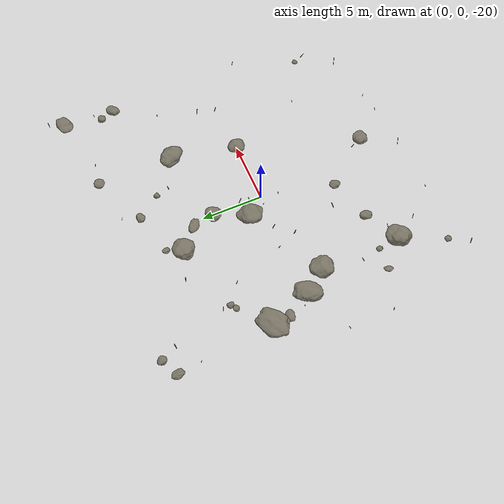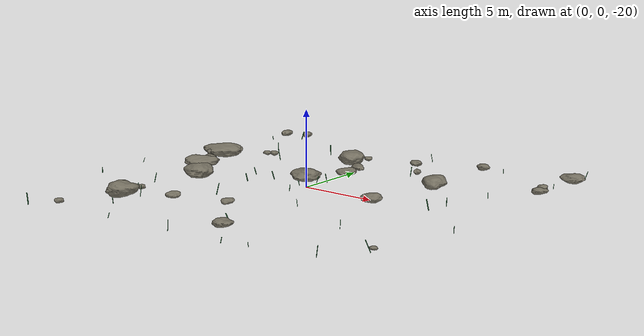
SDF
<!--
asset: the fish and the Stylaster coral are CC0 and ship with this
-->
<sdf version="1.9">
 <world name="mode_aware_survey">
  <model name="boulder_field">
   <static>true</static>
   <link name="link">
    <visual name="bo0">
     <pose>-1.24 1.55 -19.65 0 0 3.21</pose>
     <geometry>
      <mesh>
       <uri>model://uuv_mode_aware_navigation/models/meshes/rock_0.obj</uri>
       <scale>0.91 0.92 0.78</scale>
      </mesh>
     </geometry>
     <material>
      <ambient>0.07 0.08 0.07 1</ambient>
      <diffuse>0.46 0.44 0.38 1</diffuse>
      <specular>0.05 0.05 0.05 1</specular>
      <pbr>
       <metal>
        <albedo_map>model://uuv_mode_aware_navigation/models/textures/rock_albedo.png</albedo_map>
        <normal_map>model://uuv_mode_aware_navigation/models/textures/rock_normal.png</normal_map>
        <roughness>0.95</roughness>
        <metalness>0.0</metalness>
       </metal>
      </pbr>
     </material>
    </visual>
    <visual name="bo1">
     <pose>3.38 7.62 -19.88 0 0 0.26</pose>
     <geometry>
      <mesh>
       <uri>model://uuv_mode_aware_navigation/models/meshes/rock_1.obj</uri>
       <scale>0.28 0.25 0.27</scale>
      </mesh>
     </geometry>
     <material>
      <ambient>0.11 0.11 0.10 1</ambient>
      <diffuse>0.46 0.44 0.38 1</diffuse>
      <specular>0.05 0.05 0.05 1</specular>
      <pbr>
       <metal>
        <albedo_map>model://uuv_mode_aware_navigation/models/textures/rock_albedo.png</albedo_map>
        <normal_map>model://uuv_mode_aware_navigation/models/textures/rock_normal.png</normal_map>
        <roughness>0.95</roughness>
        <metalness>0.0</metalness>
       </metal>
      </pbr>
     </material>
    </visual>
    <visual name="bo2">
     <pose>12.54 12.08 -19.78 0 0 0.37</pose>
     <geometry>
      <mesh>
       <uri>model://uuv_mode_aware_navigation/models/meshes/rock_2.obj</uri>
       <scale>0.74 0.63 0.49</scale>
      </mesh>
     </geometry>
     <material>
      <ambient>0.10 0.10 0.09 1</ambient>
      <diffuse>0.46 0.44 0.38 1</diffuse>
      <specular>0.05 0.05 0.05 1</specular>
      <pbr>
       <metal>
        <albedo_map>model://uuv_mode_aware_navigation/models/textures/rock_albedo.png</albedo_map>
        <normal_map>model://uuv_mode_aware_navigation/models/textures/rock_normal.png</normal_map>
        <roughness>0.95</roughness>
        <metalness>0.0</metalness>
       </metal>
      </pbr>
     </material>
    </visual>
    <visual name="bo3">
     <pose>-8.05 -6.71 -19.90 0 0 4.02</pose>
     <geometry>
      <mesh>
       <uri>model://uuv_mode_aware_navigation/models/meshes/rock_3.obj</uri>
       <scale>0.24 0.24 0.23</scale>
      </mesh>
     </geometry>
     <material>
      <ambient>0.10 0.10 0.09 1</ambient>
      <diffuse>0.46 0.44 0.38 1</diffuse>
      <specular>0.05 0.05 0.05 1</specular>
      <pbr>
       <metal>
        <albedo_map>model://uuv_mode_aware_navigation/models/textures/rock_albedo.png</albedo_map>
        <normal_map>model://uuv_mode_aware_navigation/models/textures/rock_normal.png</normal_map>
        <roughness>0.95</roughness>
        <metalness>0.0</metalness>
       </metal>
      </pbr>
     </material>
    </visual>
    <visual name="bo4">
     <pose>-0.01 4.22 -19.75 0 0 4.45</pose>
     <geometry>
      <mesh>
       <uri>model://uuv_mode_aware_navigation/models/meshes/rock_4.obj</uri>
       <scale>0.52 0.66 0.55</scale>
      </mesh>
     </geometry>
     <material>
      <ambient>0.12 0.12 0.11 1</ambient>
      <diffuse>0.46 0.44 0.38 1</diffuse>
      <specular>0.05 0.05 0.05 1</specular>
      <pbr>
       <metal>
        <albedo_map>model://uuv_mode_aware_navigation/models/textures/rock_albedo.png</albedo_map>
        <normal_map>model://uuv_mode_aware_navigation/models/textures/rock_normal.png</normal_map>
        <roughness>0.95</roughness>
        <metalness>0.0</metalness>
       </metal>
      </pbr>
     </material>
    </visual>
    <visual name="bo5">
     <pose>-4.80 -7.03 -19.84 0 0 2.43</pose>
     <geometry>
      <mesh>
       <uri>model://uuv_mode_aware_navigation/models/meshes/rock_5.obj</uri>
       <scale>0.38 0.48 0.35</scale>
      </mesh>
     </geometry>
     <material>
      <ambient>0.12 0.12 0.11 1</ambient>
      <diffuse>0.46 0.44 0.38 1</diffuse>
      <specular>0.05 0.05 0.05 1</specular>
      <pbr>
       <metal>
        <albedo_map>model://uuv_mode_aware_navigation/models/textures/rock_albedo.png</albedo_map>
        <normal_map>model://uuv_mode_aware_navigation/models/textures/rock_normal.png</normal_map>
        <roughness>0.95</roughness>
        <metalness>0.0</metalness>
       </metal>
      </pbr>
     </material>
    </visual>
    <visual name="bo6">
     <pose>11.91 9.03 -19.92 0 0 2.50</pose>
     <geometry>
      <mesh>
       <uri>model://uuv_mode_aware_navigation/models/meshes/rock_6.obj</uri>
       <scale>0.3076 0.3076 0.3076</scale>
      </mesh>
     </geometry>
     <material>
      <ambient>0.12 0.13 0.12 1</ambient>
      <diffuse>0.46 0.44 0.38 1</diffuse>
      <specular>0.05 0.05 0.05 1</specular>
      <pbr>
       <metal>
        <albedo_map>model://uuv_mode_aware_navigation/models/textures/rock_albedo.png</albedo_map>
        <normal_map>model://uuv_mode_aware_navigation/models/textures/rock_normal.png</normal_map>
        <roughness>0.95</roughness>
        <metalness>0.0</metalness>
       </metal>
      </pbr>
     </material>
    </visual>
    <visual name="bo7">
     <pose>-11.10 3.37 -19.72 0 0 4.76</pose>
     <geometry>
      <mesh>
       <uri>model://uuv_mode_aware_navigation/models/meshes/rock_7.obj</uri>
       <scale>0.74 0.69 0.63</scale>
      </mesh>
     </geometry>
     <material>
      <ambient>0.12 0.13 0.12 1</ambient>
      <diffuse>0.46 0.44 0.38 1</diffuse>
      <specular>0.05 0.05 0.05 1</specular>
      <pbr>
       <metal>
        <albedo_map>model://uuv_mode_aware_navigation/models/textures/rock_albedo.png</albedo_map>
        <normal_map>model://uuv_mode_aware_navigation/models/textures/rock_normal.png</normal_map>
        <roughness>0.95</roughness>
        <metalness>0.0</metalness>
       </metal>
      </pbr>
     </material>
    </visual>
    <visual name="bo8">
     <pose>-9.93 -6.59 -19.90 0 0 2.81</pose>
     <geometry>
      <mesh>
       <uri>model://uuv_mode_aware_navigation/models/meshes/rock_0.obj</uri>
       <scale>0.26 0.33 0.22</scale>
      </mesh>
     </geometry>
     <material>
      <ambient>0.10 0.10 0.09 1</ambient>
      <diffuse>0.46 0.44 0.38 1</diffuse>
      <specular>0.05 0.05 0.05 1</specular>
      <pbr>
       <metal>
        <albedo_map>model://uuv_mode_aware_navigation/models/textures/rock_albedo.png</albedo_map>
        <normal_map>model://uuv_mode_aware_navigation/models/textures/rock_normal.png</normal_map>
        <roughness>0.95</roughness>
        <metalness>0.0</metalness>
       </metal>
      </pbr>
     </material>
    </visual>
    <visual name="bo9">
     <pose>-8.04 6.03 -19.88 0 0 1.69</pose>
     <geometry>
      <mesh>
       <uri>model://uuv_mode_aware_navigation/models/meshes/rock_1.obj</uri>
       <scale>0.34 0.28 0.26</scale>
      </mesh>
     </geometry>
     <material>
      <ambient>0.08 0.08 0.07 1</ambient>
      <diffuse>0.46 0.44 0.38 1</diffuse>
      <specular>0.05 0.05 0.05 1</specular>
      <pbr>
       <metal>
        <albedo_map>model://uuv_mode_aware_navigation/models/textures/rock_albedo.png</albedo_map>
        <normal_map>model://uuv_mode_aware_navigation/models/textures/rock_normal.png</normal_map>
        <roughness>0.95</roughness>
        <metalness>0.0</metalness>
       </metal>
      </pbr>
     </material>
    </visual>
    <visual name="bo10">
     <pose>12.24 7.89 -19.84 0 0 4.03</pose>
     <geometry>
      <mesh>
       <uri>model://uuv_mode_aware_navigation/models/meshes/rock_2.obj</uri>
       <scale>0.51 0.41 0.36</scale>
      </mesh>
     </geometry>
     <material>
      <ambient>0.12 0.12 0.11 1</ambient>
      <diffuse>0.46 0.44 0.38 1</diffuse>
      <specular>0.05 0.05 0.05 1</specular>
      <pbr>
       <metal>
        <albedo_map>model://uuv_mode_aware_navigation/models/textures/rock_albedo.png</albedo_map>
        <normal_map>model://uuv_mode_aware_navigation/models/textures/rock_normal.png</normal_map>
        <roughness>0.95</roughness>
        <metalness>0.0</metalness>
       </metal>
      </pbr>
     </material>
    </visual>
    <visual name="bo11">
     <pose>-10.39 12.72 -19.86 0 0 0.46</pose>
     <geometry>
      <mesh>
       <uri>model://uuv_mode_aware_navigation/models/meshes/rock_3.obj</uri>
       <scale>0.35 0.42 0.30</scale>
      </mesh>
     </geometry>
     <material>
      <ambient>0.08 0.09 0.08 1</ambient>
      <diffuse>0.46 0.44 0.38 1</diffuse>
      <specular>0.05 0.05 0.05 1</specular>
      <pbr>
       <metal>
        <albedo_map>model://uuv_mode_aware_navigation/models/textures/rock_albedo.png</albedo_map>
        <normal_map>model://uuv_mode_aware_navigation/models/textures/rock_normal.png</normal_map>
        <roughness>0.95</roughness>
        <metalness>0.0</metalness>
       </metal>
      </pbr>
     </material>
    </visual>
    <visual name="bo12">
     <pose>-10.66 2.15 -19.85 0 0 3.04</pose>
     <geometry>
      <mesh>
       <uri>model://uuv_mode_aware_navigation/models/meshes/rock_4.obj</uri>
       <scale>0.42 0.39 0.33</scale>
      </mesh>
     </geometry>
     <material>
      <ambient>0.12 0.13 0.12 1</ambient>
      <diffuse>0.46 0.44 0.38 1</diffuse>
      <specular>0.05 0.05 0.05 1</specular>
      <pbr>
       <metal>
        <albedo_map>model://uuv_mode_aware_navigation/models/textures/rock_albedo.png</albedo_map>
        <normal_map>model://uuv_mode_aware_navigation/models/textures/rock_normal.png</normal_map>
        <roughness>0.95</roughness>
        <metalness>0.0</metalness>
       </metal>
      </pbr>
     </material>
    </visual>
    <visual name="bo13">
     <pose>1.94 9.53 -19.85 0 0 1.19</pose>
     <geometry>
      <mesh>
       <uri>model://uuv_mode_aware_navigation/models/meshes/rock_5.obj</uri>
       <scale>0.32 0.41 0.33</scale>
      </mesh>
     </geometry>
     <material>
      <ambient>0.08 0.08 0.07 1</ambient>
      <diffuse>0.46 0.44 0.38 1</diffuse>
      <specular>0.05 0.05 0.05 1</specular>
      <pbr>
       <metal>
        <albedo_map>model://uuv_mode_aware_navigation/models/textures/rock_albedo.png</albedo_map>
        <normal_map>model://uuv_mode_aware_navigation/models/textures/rock_normal.png</normal_map>
        <roughness>0.95</roughness>
        <metalness>0.0</metalness>
       </metal>
      </pbr>
     </material>
    </visual>
    <visual name="bo14">
     <pose>6.23 11.45 -19.86 0 0 0.65</pose>
     <geometry>
      <mesh>
       <uri>model://uuv_mode_aware_navigation/models/meshes/rock_6.obj</uri>
       <scale>0.43 0.42 0.32</scale>
      </mesh>
     </geometry>
     <material>
      <ambient>0.09 0.09 0.08 1</ambient>
      <diffuse>0.46 0.44 0.38 1</diffuse>
      <specular>0.05 0.05 0.05 1</specular>
      <pbr>
       <metal>
        <albedo_map>model://uuv_mode_aware_navigation/models/textures/rock_albedo.png</albedo_map>
        <normal_map>model://uuv_mode_aware_navigation/models/textures/rock_normal.png</normal_map>
        <roughness>0.95</roughness>
        <metalness>0.0</metalness>
       </metal>
      </pbr>
     </material>
    </visual>
    <visual name="bo15">
     <pose>-11.99 12.03 -19.83 0 0 1.84</pose>
     <geometry>
      <mesh>
       <uri>model://uuv_mode_aware_navigation/models/meshes/rock_7.obj</uri>
       <scale>0.43 0.37 0.37</scale>
      </mesh>
     </geometry>
     <material>
      <ambient>0.10 0.11 0.09 1</ambient>
      <diffuse>0.46 0.44 0.38 1</diffuse>
      <specular>0.05 0.05 0.05 1</specular>
      <pbr>
       <metal>
        <albedo_map>model://uuv_mode_aware_navigation/models/textures/rock_albedo.png</albedo_map>
        <normal_map>model://uuv_mode_aware_navigation/models/textures/rock_normal.png</normal_map>
        <roughness>0.95</roughness>
        <metalness>0.0</metalness>
       </metal>
      </pbr>
     </material>
    </visual>
    <visual name="bo16">
     <pose>-8.44 5.73 -19.88 0 0 1.76</pose>
     <geometry>
      <mesh>
       <uri>model://uuv_mode_aware_navigation/models/meshes/rock_0.obj</uri>
       <scale>0.25 0.28 0.26</scale>
      </mesh>
     </geometry>
     <material>
      <ambient>0.10 0.11 0.09 1</ambient>
      <diffuse>0.46 0.44 0.38 1</diffuse>
      <specular>0.05 0.05 0.05 1</specular>
      <pbr>
       <metal>
        <albedo_map>model://uuv_mode_aware_navigation/models/textures/rock_albedo.png</albedo_map>
        <normal_map>model://uuv_mode_aware_navigation/models/textures/rock_normal.png</normal_map>
        <roughness>0.95</roughness>
        <metalness>0.0</metalness>
       </metal>
      </pbr>
     </material>
    </visual>
    <visual name="bo17">
     <pose>10.85 -7.70 -19.92 0 0 2.32</pose>
     <geometry>
      <mesh>
       <uri>model://uuv_mode_aware_navigation/models/meshes/rock_1.obj</uri>
       <scale>0.22 0.23 0.17</scale>
      </mesh>
     </geometry>
     <material>
      <ambient>0.07 0.08 0.07 1</ambient>
      <diffuse>0.46 0.44 0.38 1</diffuse>
      <specular>0.05 0.05 0.05 1</specular>
      <pbr>
       <metal>
        <albedo_map>model://uuv_mode_aware_navigation/models/textures/rock_albedo.png</albedo_map>
        <normal_map>model://uuv_mode_aware_navigation/models/textures/rock_normal.png</normal_map>
        <roughness>0.95</roughness>
        <metalness>0.0</metalness>
       </metal>
      </pbr>
     </material>
    </visual>
    <visual name="bo18">
     <pose>1.88 -9.58 -19.80 0 0 3.67</pose>
     <geometry>
      <mesh>
       <uri>model://uuv_mode_aware_navigation/models/meshes/rock_2.obj</uri>
       <scale>0.56 0.58 0.43</scale>
      </mesh>
     </geometry>
     <material>
      <ambient>0.11 0.11 0.10 1</ambient>
      <diffuse>0.46 0.44 0.38 1</diffuse>
      <specular>0.05 0.05 0.05 1</specular>
      <pbr>
       <metal>
        <albedo_map>model://uuv_mode_aware_navigation/models/textures/rock_albedo.png</albedo_map>
        <normal_map>model://uuv_mode_aware_navigation/models/textures/rock_normal.png</normal_map>
        <roughness>0.95</roughness>
        <metalness>0.0</metalness>
       </metal>
      </pbr>
     </material>
    </visual>
    <visual name="bo19">
     <pose>-9.35 -12.09 -19.90 0 0 4.00</pose>
     <geometry>
      <mesh>
       <uri>model://uuv_mode_aware_navigation/models/meshes/rock_3.obj</uri>
       <scale>0.27 0.26 0.23</scale>
      </mesh>
     </geometry>
     <material>
      <ambient>0.06 0.07 0.06 1</ambient>
      <diffuse>0.46 0.44 0.38 1</diffuse>
      <specular>0.05 0.05 0.05 1</specular>
      <pbr>
       <metal>
        <albedo_map>model://uuv_mode_aware_navigation/models/textures/rock_albedo.png</albedo_map>
        <normal_map>model://uuv_mode_aware_navigation/models/textures/rock_normal.png</normal_map>
        <roughness>0.95</roughness>
        <metalness>0.0</metalness>
       </metal>
      </pbr>
     </material>
    </visual>
    <visual name="bo20">
     <pose>-0.46 5.99 -19.82 0 0 5.65</pose>
     <geometry>
      <mesh>
       <uri>model://uuv_mode_aware_navigation/models/meshes/rock_4.obj</uri>
       <scale>0.54 0.40 0.39</scale>
      </mesh>
     </geometry>
     <material>
      <ambient>0.11 0.11 0.10 1</ambient>
      <diffuse>0.46 0.44 0.38 1</diffuse>
      <specular>0.05 0.05 0.05 1</specular>
      <pbr>
       <metal>
        <albedo_map>model://uuv_mode_aware_navigation/models/textures/rock_albedo.png</albedo_map>
        <normal_map>model://uuv_mode_aware_navigation/models/textures/rock_normal.png</normal_map>
        <roughness>0.95</roughness>
        <metalness>0.0</metalness>
       </metal>
      </pbr>
     </material>
    </visual>
    <visual name="bo21">
     <pose>6.16 5.30 -19.67 0 0 5.47</pose>
     <geometry>
      <mesh>
       <uri>model://uuv_mode_aware_navigation/models/meshes/rock_5.obj</uri>
       <scale>0.94 0.78 0.72</scale>
      </mesh>
     </geometry>
     <material>
      <ambient>0.12 0.13 0.11 1</ambient>
      <diffuse>0.46 0.44 0.38 1</diffuse>
      <specular>0.05 0.05 0.05 1</specular>
      <pbr>
       <metal>
        <albedo_map>model://uuv_mode_aware_navigation/models/textures/rock_albedo.png</albedo_map>
        <normal_map>model://uuv_mode_aware_navigation/models/textures/rock_normal.png</normal_map>
        <roughness>0.95</roughness>
        <metalness>0.0</metalness>
       </metal>
      </pbr>
     </material>
    </visual>
    <visual name="bo22">
     <pose>-2.15 7.55 -19.69 0 0 3.82</pose>
     <geometry>
      <mesh>
       <uri>model://uuv_mode_aware_navigation/models/meshes/rock_6.obj</uri>
       <scale>0.89 0.91 0.69</scale>
      </mesh>
     </geometry>
     <material>
      <ambient>0.10 0.10 0.09 1</ambient>
      <diffuse>0.46 0.44 0.38 1</diffuse>
      <specular>0.05 0.05 0.05 1</specular>
      <pbr>
       <metal>
        <albedo_map>model://uuv_mode_aware_navigation/models/textures/rock_albedo.png</albedo_map>
        <normal_map>model://uuv_mode_aware_navigation/models/textures/rock_normal.png</normal_map>
        <roughness>0.95</roughness>
        <metalness>0.0</metalness>
       </metal>
      </pbr>
     </material>
    </visual>
    <visual name="bo23">
     <pose>-10.91 3.62 -19.65 0 0 3.65</pose>
     <geometry>
      <mesh>
       <uri>model://uuv_mode_aware_navigation/models/meshes/rock_7.obj</uri>
       <scale>1.09 1.04 0.77</scale>
      </mesh>
     </geometry>
     <material>
      <ambient>0.11 0.11 0.10 1</ambient>
      <diffuse>0.46 0.44 0.38 1</diffuse>
      <specular>0.05 0.05 0.05 1</specular>
      <pbr>
       <metal>
        <albedo_map>model://uuv_mode_aware_navigation/models/textures/rock_albedo.png</albedo_map>
        <normal_map>model://uuv_mode_aware_navigation/models/textures/rock_normal.png</normal_map>
        <roughness>0.95</roughness>
        <metalness>0.0</metalness>
       </metal>
      </pbr>
     </material>
    </visual>
    <visual name="bo24">
     <pose>-1.55 8.80 -19.89 0 0 1.45</pose>
     <geometry>
      <mesh>
       <uri>model://uuv_mode_aware_navigation/models/meshes/rock_0.obj</uri>
       <scale>0.31 0.24 0.25</scale>
      </mesh>
     </geometry>
     <material>
      <ambient>0.09 0.10 0.09 1</ambient>
      <diffuse>0.46 0.44 0.38 1</diffuse>
      <specular>0.05 0.05 0.05 1</specular>
      <pbr>
       <metal>
        <albedo_map>model://uuv_mode_aware_navigation/models/textures/rock_albedo.png</albedo_map>
        <normal_map>model://uuv_mode_aware_navigation/models/textures/rock_normal.png</normal_map>
        <roughness>0.95</roughness>
        <metalness>0.0</metalness>
       </metal>
      </pbr>
     </material>
    </visual>
    <visual name="bo25">
     <pose>5.16 -0.07 -19.79 0 0 4.26</pose>
     <geometry>
      <mesh>
       <uri>model://uuv_mode_aware_navigation/models/meshes/rock_1.obj</uri>
       <scale>0.78 0.63 0.47</scale>
      </mesh>
     </geometry>
     <material>
      <ambient>0.08 0.09 0.08 1</ambient>
      <diffuse>0.46 0.44 0.38 1</diffuse>
      <specular>0.05 0.05 0.05 1</specular>
      <pbr>
       <metal>
        <albedo_map>model://uuv_mode_aware_navigation/models/textures/rock_albedo.png</albedo_map>
        <normal_map>model://uuv_mode_aware_navigation/models/textures/rock_normal.png</normal_map>
        <roughness>0.95</roughness>
        <metalness>0.0</metalness>
       </metal>
      </pbr>
     </material>
    </visual>
    <visual name="bo26">
     <pose>-7.73 -8.59 -19.62 0 0 4.18</pose>
     <geometry>
      <mesh>
       <uri>model://uuv_mode_aware_navigation/models/meshes/rock_2.obj</uri>
       <scale>0.95 0.89 0.85</scale>
      </mesh>
     </geometry>
     <material>
      <ambient>0.08 0.09 0.08 1</ambient>
      <diffuse>0.46 0.44 0.38 1</diffuse>
      <specular>0.05 0.05 0.05 1</specular>
      <pbr>
       <metal>
        <albedo_map>model://uuv_mode_aware_navigation/models/textures/rock_albedo.png</albedo_map>
        <normal_map>model://uuv_mode_aware_navigation/models/textures/rock_normal.png</normal_map>
        <roughness>0.95</roughness>
        <metalness>0.0</metalness>
       </metal>
      </pbr>
     </material>
    </visual>
    <visual name="bo27">
     <pose>-7.84 -1.80 -19.70 0 0 1.99</pose>
     <geometry>
      <mesh>
       <uri>model://uuv_mode_aware_navigation/models/meshes/rock_3.obj</uri>
       <scale>0.95 0.94 0.66</scale>
      </mesh>
     </geometry>
     <material>
      <ambient>0.10 0.10 0.09 1</ambient>
      <diffuse>0.46 0.44 0.38 1</diffuse>
      <specular>0.05 0.05 0.05 1</specular>
      <pbr>
       <metal>
        <albedo_map>model://uuv_mode_aware_navigation/models/textures/rock_albedo.png</albedo_map>
        <normal_map>model://uuv_mode_aware_navigation/models/textures/rock_normal.png</normal_map>
        <roughness>0.95</roughness>
        <metalness>0.0</metalness>
       </metal>
      </pbr>
     </material>
    </visual>
    <visual name="bo28">
     <pose>-9.46 -0.09 -19.63 0 0 1.06</pose>
     <geometry>
      <mesh>
       <uri>model://uuv_mode_aware_navigation/models/meshes/rock_4.obj</uri>
       <scale>0.95 0.91 0.82</scale>
      </mesh>
     </geometry>
     <material>
      <ambient>0.08 0.08 0.08 1</ambient>
      <diffuse>0.46 0.44 0.38 1</diffuse>
      <specular>0.05 0.05 0.05 1</specular>
      <pbr>
       <metal>
        <albedo_map>model://uuv_mode_aware_navigation/models/textures/rock_albedo.png</albedo_map>
        <normal_map>model://uuv_mode_aware_navigation/models/textures/rock_normal.png</normal_map>
        <roughness>0.95</roughness>
        <metalness>0.0</metalness>
       </metal>
      </pbr>
     </material>
    </visual>
    <visual name="bo29">
     <pose>-1.28 -5.85 -19.86 0 0 5.27</pose>
     <geometry>
      <mesh>
       <uri>model://uuv_mode_aware_navigation/models/meshes/rock_5.obj</uri>
       <scale>0.37 0.40 0.32</scale>
      </mesh>
     </geometry>
     <material>
      <ambient>0.08 0.09 0.08 1</ambient>
      <diffuse>0.46 0.44 0.38 1</diffuse>
      <specular>0.05 0.05 0.05 1</specular>
      <pbr>
       <metal>
        <albedo_map>model://uuv_mode_aware_navigation/models/textures/rock_albedo.png</albedo_map>
        <normal_map>model://uuv_mode_aware_navigation/models/textures/rock_normal.png</normal_map>
        <roughness>0.95</roughness>
        <metalness>0.0</metalness>
       </metal>
      </pbr>
     </material>
    </visual>
   </link>
  </model>
  <model name="growth">
   <static>true</static>
   <link name="link">
    <visual name="g0">
     <pose>-4.69 8.42 -19.63 -0.06 -0.06 0</pose>
     <geometry><cylinder><radius>0.029</radius><length>0.74</length></cylinder></geometry>
     <material><ambient>0.03 0.09 0.05 1</ambient><diffuse>0.18 0.52 0.26 1</diffuse></material>
    </visual>
    <visual name="g1">
     <pose>-9.77 11.34 -19.67 -0.21 0.20 0</pose>
     <geometry><cylinder><radius>0.030</radius><length>0.65</length></cylinder></geometry>
     <material><ambient>0.03 0.09 0.05 1</ambient><diffuse>0.18 0.52 0.26 1</diffuse></material>
    </visual>
    <visual name="g2">
     <pose>-10.33 -13.60 -19.63 0.09 0.02 0</pose>
     <geometry><cylinder><radius>0.029</radius><length>0.74</length></cylinder></geometry>
     <material><ambient>0.03 0.09 0.05 1</ambient><diffuse>0.18 0.52 0.26 1</diffuse></material>
    </visual>
    <visual name="g3">
     <pose>-8.09 -6.95 -19.80 -0.16 0.05 0</pose>
     <geometry><cylinder><radius>0.017</radius><length>0.40</length></cylinder></geometry>
     <material><ambient>0.03 0.09 0.05 1</ambient><diffuse>0.18 0.52 0.26 1</diffuse></material>
    </visual>
    <visual name="g4">
     <pose>-4.09 -1.17 -19.73 0.24 -0.05 0</pose>
     <geometry><cylinder><radius>0.029</radius><length>0.54</length></cylinder></geometry>
     <material><ambient>0.03 0.09 0.05 1</ambient><diffuse>0.18 0.52 0.26 1</diffuse></material>
    </visual>
    <visual name="g5">
     <pose>-13.48 -1.68 -19.83 -0.30 0.18 0</pose>
     <geometry><cylinder><radius>0.015</radius><length>0.34</length></cylinder></geometry>
     <material><ambient>0.03 0.09 0.05 1</ambient><diffuse>0.18 0.52 0.26 1</diffuse></material>
    </visual>
    <visual name="g6">
     <pose>-4.87 0.51 -19.74 0.17 -0.24 0</pose>
     <geometry><cylinder><radius>0.022</radius><length>0.53</length></cylinder></geometry>
     <material><ambient>0.03 0.09 0.05 1</ambient><diffuse>0.18 0.52 0.26 1</diffuse></material>
    </visual>
    <visual name="g7">
     <pose>0.22 1.73 -19.69 0.25 -0.03 0</pose>
     <geometry><cylinder><radius>0.023</radius><length>0.63</length></cylinder></geometry>
     <material><ambient>0.03 0.09 0.05 1</ambient><diffuse>0.18 0.52 0.26 1</diffuse></material>
    </visual>
    <visual name="g8">
     <pose>-1.33 0.93 -19.76 0.26 0.12 0</pose>
     <geometry><cylinder><radius>0.028</radius><length>0.49</length></cylinder></geometry>
     <material><ambient>0.03 0.09 0.05 1</ambient><diffuse>0.18 0.52 0.26 1</diffuse></material>
    </visual>
    <visual name="g9">
     <pose>12.41 9.52 -19.84 -0.23 -0.03 0</pose>
     <geometry><cylinder><radius>0.013</radius><length>0.32</length></cylinder></geometry>
     <material><ambient>0.03 0.09 0.05 1</ambient><diffuse>0.18 0.52 0.26 1</diffuse></material>
    </visual>
    <visual name="g10">
     <pose>7.95 11.12 -19.84 0.13 0.10 0</pose>
     <geometry><cylinder><radius>0.015</radius><length>0.33</length></cylinder></geometry>
     <material><ambient>0.03 0.09 0.05 1</ambient><diffuse>0.18 0.52 0.26 1</diffuse></material>
    </visual>
    <visual name="g11">
     <pose>12.67 -2.85 -19.75 0.29 0.20 0</pose>
     <geometry><cylinder><radius>0.015</radius><length>0.49</length></cylinder></geometry>
     <material><ambient>0.03 0.09 0.05 1</ambient><diffuse>0.18 0.52 0.26 1</diffuse></material>
    </visual>
    <visual name="g12">
     <pose>-8.52 -5.08 -19.69 -0.29 0.03 0</pose>
     <geometry><cylinder><radius>0.020</radius><length>0.61</length></cylinder></geometry>
     <material><ambient>0.03 0.09 0.05 1</ambient><diffuse>0.18 0.52 0.26 1</diffuse></material>
    </visual>
    <visual name="g13">
     <pose>0.34 -12.20 -19.63 0.17 0.28 0</pose>
     <geometry><cylinder><radius>0.014</radius><length>0.74</length></cylinder></geometry>
     <material><ambient>0.03 0.09 0.05 1</ambient><diffuse>0.18 0.52 0.26 1</diffuse></material>
    </visual>
    <visual name="g14">
     <pose>-6.43 -10.37 -19.77 0.25 0.19 0</pose>
     <geometry><cylinder><radius>0.017</radius><length>0.46</length></cylinder></geometry>
     <material><ambient>0.03 0.09 0.05 1</ambient><diffuse>0.18 0.52 0.26 1</diffuse></material>
    </visual>
    <visual name="g15">
     <pose>5.61 -11.50 -19.86 0.11 -0.04 0</pose>
     <geometry><cylinder><radius>0.013</radius><length>0.28</length></cylinder></geometry>
     <material><ambient>0.03 0.09 0.05 1</ambient><diffuse>0.18 0.52 0.26 1</diffuse></material>
    </visual>
    <visual name="g16">
     <pose>-11.66 9.97 -19.86 0.22 -0.03 0</pose>
     <geometry><cylinder><radius>0.018</radius><length>0.28</length></cylinder></geometry>
     <material><ambient>0.03 0.09 0.05 1</ambient><diffuse>0.18 0.52 0.26 1</diffuse></material>
    </visual>
    <visual name="g17">
     <pose>-10.38 0.75 -19.82 -0.23 -0.20 0</pose>
     <geometry><cylinder><radius>0.013</radius><length>0.37</length></cylinder></geometry>
     <material><ambient>0.03 0.09 0.05 1</ambient><diffuse>0.18 0.52 0.26 1</diffuse></material>
    </visual>
    <visual name="g18">
     <pose>7.27 -5.88 -19.75 -0.19 -0.09 0</pose>
     <geometry><cylinder><radius>0.012</radius><length>0.50</length></cylinder></geometry>
     <material><ambient>0.03 0.09 0.05 1</ambient><diffuse>0.18 0.52 0.26 1</diffuse></material>
    </visual>
    <visual name="g19">
     <pose>1.43 -8.70 -19.76 0.26 -0.24 0</pose>
     <geometry><cylinder><radius>0.027</radius><length>0.49</length></cylinder></geometry>
     <material><ambient>0.03 0.09 0.05 1</ambient><diffuse>0.18 0.52 0.26 1</diffuse></material>
    </visual>
    <visual name="g20">
     <pose>-2.99 0.19 -19.70 0.29 -0.09 0</pose>
     <geometry><cylinder><radius>0.027</radius><length>0.59</length></cylinder></geometry>
     <material><ambient>0.03 0.09 0.05 1</ambient><diffuse>0.18 0.52 0.26 1</diffuse></material>
    </visual>
    <visual name="g21">
     <pose>-4.27 -12.48 -19.84 -0.26 0.14 0</pose>
     <geometry><cylinder><radius>0.017</radius><length>0.31</length></cylinder></geometry>
     <material><ambient>0.03 0.09 0.05 1</ambient><diffuse>0.18 0.52 0.26 1</diffuse></material>
    </visual>
    <visual name="g22">
     <pose>10.38 4.78 -19.80 -0.15 -0.12 0</pose>
     <geometry><cylinder><radius>0.020</radius><length>0.39</length></cylinder></geometry>
     <material><ambient>0.03 0.09 0.05 1</ambient><diffuse>0.18 0.52 0.26 1</diffuse></material>
    </visual>
    <visual name="g23">
     <pose>12.93 13.23 -19.74 -0.15 0.28 0</pose>
     <geometry><cylinder><radius>0.018</radius><length>0.52</length></cylinder></geometry>
     <material><ambient>0.03 0.09 0.05 1</ambient><diffuse>0.18 0.52 0.26 1</diffuse></material>
    </visual>
    <visual name="g24">
     <pose>-0.71 0.08 -19.82 0.00 -0.30 0</pose>
     <geometry><cylinder><radius>0.017</radius><length>0.35</length></cylinder></geometry>
     <material><ambient>0.03 0.09 0.05 1</ambient><diffuse>0.18 0.52 0.26 1</diffuse></material>
    </visual>
    <visual name="g25">
     <pose>-13.37 -5.48 -19.82 0.05 0.02 0</pose>
     <geometry><cylinder><radius>0.026</radius><length>0.37</length></cylinder></geometry>
     <material><ambient>0.03 0.09 0.05 1</ambient><diffuse>0.18 0.52 0.26 1</diffuse></material>
    </visual>
    <visual name="g26">
     <pose>-3.09 -4.87 -19.63 -0.21 0.13 0</pose>
     <geometry><cylinder><radius>0.024</radius><length>0.74</length></cylinder></geometry>
     <material><ambient>0.03 0.09 0.05 1</ambient><diffuse>0.18 0.52 0.26 1</diffuse></material>
    </visual>
    <visual name="g27">
     <pose>3.57 6.55 -19.67 -0.22 0.01 0</pose>
     <geometry><cylinder><radius>0.021</radius><length>0.66</length></cylinder></geometry>
     <material><ambient>0.03 0.09 0.05 1</ambient><diffuse>0.18 0.52 0.26 1</diffuse></material>
    </visual>
    <visual name="g28">
     <pose>2.35 11.00 -19.70 0.12 -0.16 0</pose>
     <geometry><cylinder><radius>0.013</radius><length>0.59</length></cylinder></geometry>
     <material><ambient>0.03 0.09 0.05 1</ambient><diffuse>0.18 0.52 0.26 1</diffuse></material>
    </visual>
    <visual name="g29">
     <pose>9.40 1.64 -19.72 0.08 0.11 0</pose>
     <geometry><cylinder><radius>0.021</radius><length>0.56</length></cylinder></geometry>
     <material><ambient>0.03 0.09 0.05 1</ambient><diffuse>0.18 0.52 0.26 1</diffuse></material>
    </visual>
    <visual name="g30">
     <pose>0.08 0.99 -19.71 -0.26 0.14 0</pose>
     <geometry><cylinder><radius>0.017</radius><length>0.58</length></cylinder></geometry>
     <material><ambient>0.03 0.09 0.05 1</ambient><diffuse>0.18 0.52 0.26 1</diffuse></material>
    </visual>
    <visual name="g31">
     <pose>-8.25 6.72 -19.63 -0.00 -0.07 0</pose>
     <geometry><cylinder><radius>0.021</radius><length>0.74</length></cylinder></geometry>
     <material><ambient>0.03 0.09 0.05 1</ambient><diffuse>0.18 0.52 0.26 1</diffuse></material>
    </visual>
    <visual name="g32">
     <pose>4.00 -11.83 -19.84 -0.15 0.15 0</pose>
     <geometry><cylinder><radius>0.017</radius><length>0.32</length></cylinder></geometry>
     <material><ambient>0.03 0.09 0.05 1</ambient><diffuse>0.18 0.52 0.26 1</diffuse></material>
    </visual>
    <visual name="g33">
     <pose>-6.47 4.82 -19.70 0.11 -0.13 0</pose>
     <geometry><cylinder><radius>0.021</radius><length>0.60</length></cylinder></geometry>
     <material><ambient>0.03 0.09 0.05 1</ambient><diffuse>0.18 0.52 0.26 1</diffuse></material>
    </visual>
    <visual name="g34">
     <pose>11.02 -8.42 -19.63 0.26 -0.29 0</pose>
     <geometry><cylinder><radius>0.020</radius><length>0.74</length></cylinder></geometry>
     <material><ambient>0.03 0.09 0.05 1</ambient><diffuse>0.18 0.52 0.26 1</diffuse></material>
    </visual>
    <visual name="g35">
     <pose>-6.48 -8.12 -19.64 -0.17 0.05 0</pose>
     <geometry><cylinder><radius>0.015</radius><length>0.72</length></cylinder></geometry>
     <material><ambient>0.03 0.09 0.05 1</ambient><diffuse>0.18 0.52 0.26 1</diffuse></material>
    </visual>
    <visual name="g36">
     <pose>8.97 0.24 -19.65 0.12 -0.16 0</pose>
     <geometry><cylinder><radius>0.028</radius><length>0.69</length></cylinder></geometry>
     <material><ambient>0.03 0.09 0.05 1</ambient><diffuse>0.18 0.52 0.26 1</diffuse></material>
    </visual>
    <visual name="g37">
     <pose>-0.23 -1.38 -19.80 -0.22 -0.09 0</pose>
     <geometry><cylinder><radius>0.018</radius><length>0.40</length></cylinder></geometry>
     <material><ambient>0.03 0.09 0.05 1</ambient><diffuse>0.18 0.52 0.26 1</diffuse></material>
    </visual>
    <visual name="g38">
     <pose>9.50 -10.64 -19.64 0.13 0.24 0</pose>
     <geometry><cylinder><radius>0.017</radius><length>0.71</length></cylinder></geometry>
     <material><ambient>0.03 0.09 0.05 1</ambient><diffuse>0.18 0.52 0.26 1</diffuse></material>
    </visual>
    <visual name="g39">
     <pose>2.50 -3.90 -19.77 -0.13 -0.27 0</pose>
     <geometry><cylinder><radius>0.014</radius><length>0.46</length></cylinder></geometry>
     <material><ambient>0.03 0.09 0.05 1</ambient><diffuse>0.18 0.52 0.26 1</diffuse></material>
    </visual>
   </link>
  </model>
 </world>
</sdf>
